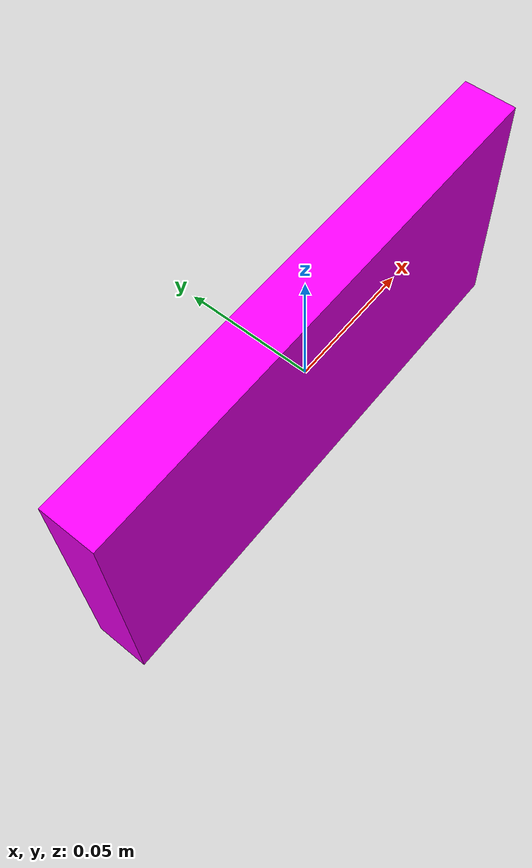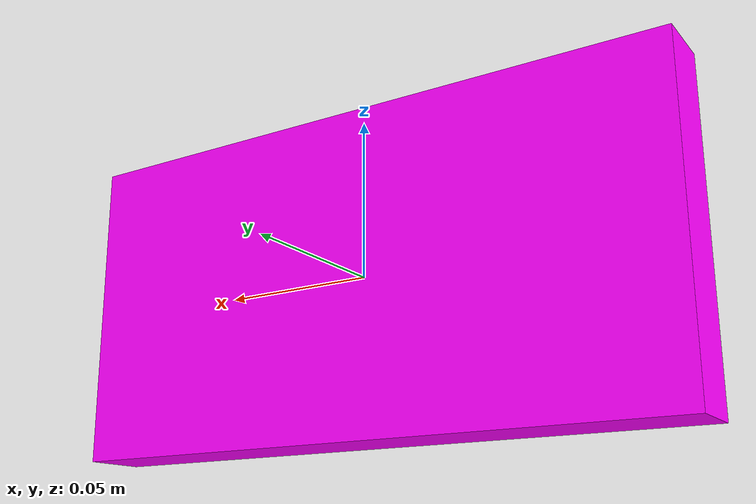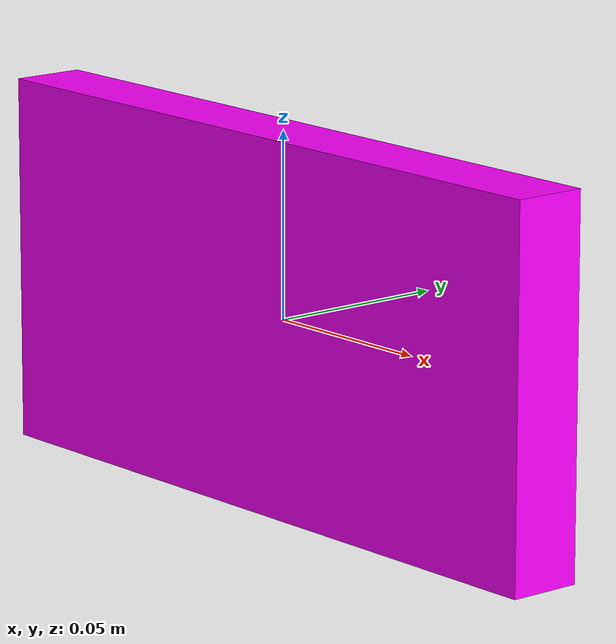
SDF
<?xml version="1.0"?>
<sdf version="1.7">
  <model name="parking_limitation">
    <static>true</static>
    <link name="link">
      <!-- WRO Official Spec 13.25: Rectangular parallelepiped 200x20x100mm -->
      <visual name="visual">
        <geometry>
          <box>
            <size>0.20 0.02 0.10</size>  <!-- 200mm × 20mm × 100mm -->
          </box>
        </geometry>
        <material>
          <ambient>1.0 0.0 1.0 1</ambient>  <!-- Magenta RGB(255,0,255), WRO Spec 13.27 -->
          <diffuse>1.0 0.0 1.0 1</diffuse>
          <specular>0.3 0.3 0.3 1</specular>
        </material>
      </visual>

      <collision name="collision">
        <geometry>
          <box>
            <size>0.20 0.02 0.10</size>
          </box>
        </geometry>
      </collision>

      <inertial>
        <mass>0.2</mass>  <!-- Weight not defined per Spec 13.29 -->
        <inertia>
          <ixx>0.0002</ixx>
          <iyy>0.0007</iyy>
          <izz>0.0007</izz>
        </inertia>
      </inertial>
    </link>
  </model>
</sdf>
